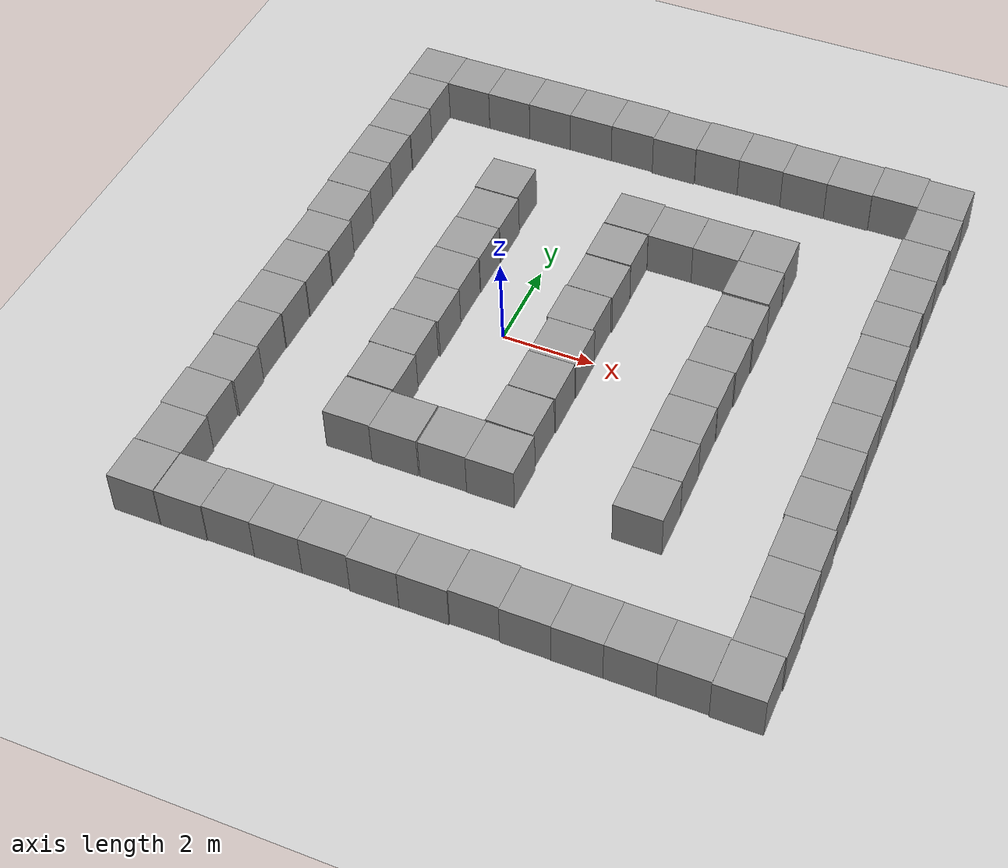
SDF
<sdf version="1.4">
 <world name="default">
  <light name="sun" type="directional">
   <pose>0 0 10 0 -0 0</pose>
   <diffuse>0.8 0.8 0.8 1</diffuse>
   <specular>0.2 0.2 0.2 1</specular>
   <attenuation>
    <range>1000</range>
    <constant>0.9</constant>
    <linear>0.01</linear>
    <quadratic>0.001</quadratic>
   </attenuation>
   <direction>-0.5 0.1 -0.9</direction>
  </light>
  <model name="ground_plane">
   <static>1</static>
   <link name="link">
    <collision name="collision">
     <geometry><plane><normal>0 0 1</normal><size>100 100</size></plane></geometry>
     <surface><friction><ode><mu>100</mu><mu2>50</mu2></ode></friction></surface>
    </collision>
    <visual name="visual">
     <cast_shadows>0</cast_shadows>
     <geometry><plane><normal>0 0 1</normal><size>100 100</size></plane></geometry>
     <material>
      <script><uri>file://media/materials/scripts/gazebo.material</uri><name>Gazebo/Grey</name></script>
     </material>
    </visual>
    <velocity_decay><linear>0</linear><angular>0</angular></velocity_decay>
   </link>
  </model>
  <physics type="ode">
   <max_step_size>0.001</max_step_size>
   <real_time_factor>1</real_time_factor>
   <real_time_update_rate>1000</real_time_update_rate>
   <gravity>0 0 -9.8</gravity>
  </physics>
  <scene><ambient>0.4 0.4 0.4 1</ambient><background>0.7 0.7 0.7 1</background><shadows>1</shadows></scene>
  <spherical_coordinates>
   <surface_model>EARTH_WGS84</surface_model>
   <latitude_deg>0</latitude_deg>
   <longitude_deg>0</longitude_deg>
   <elevation>0</elevation>
   <heading_deg>0</heading_deg>
  </spherical_coordinates>
  <model name="unit_box_1">
   <pose>-1.45911 -0.497832 0.5 0 -0 -0.000684</pose>
   <link name="link">
    <inertial>
     <mass>1</mass>
     <inertia><ixx>1</ixx><ixy>0</ixy><ixz>0</ixz><iyy>1</iyy><iyz>0</iyz><izz>1</izz></inertia>
    </inertial>
    <collision name="collision"><geometry><box><size>1 1 1</size></box></geometry></collision>
    <visual name="visual">
     <geometry><box><size>1 1 1</size></box></geometry>
     <material>
      <script><uri>file://media/materials/scripts/gazebo.material</uri><name>Gazebo/Grey</name></script>
     </material>
    </visual>
    <velocity_decay><linear>0</linear><angular>0</angular></velocity_decay>
   </link>
   <static>0</static>
  </model>
  <model name="unit_box_2">
   <pose>-1.47029 0.502232 0.5 -0 -0 -0.000612</pose>
   <link name="link">
    <inertial>
     <mass>1</mass>
     <inertia><ixx>1</ixx><ixy>0</ixy><ixz>0</ixz><iyy>1</iyy><iyz>0</iyz><izz>1</izz></inertia>
    </inertial>
    <collision name="collision"><geometry><box><size>1 1 1</size></box></geometry></collision>
    <visual name="visual">
     <geometry><box><size>1 1 1</size></box></geometry>
     <material>
      <script><uri>file://media/materials/scripts/gazebo.material</uri><name>Gazebo/Grey</name></script>
     </material>
    </visual>
    <velocity_decay><linear>0</linear><angular>0</angular></velocity_decay>
   </link>
   <static>0</static>
  </model>
  <model name="unit_box_3">
   <pose>-1.45782 1.50225 0.5 0 0 -0.000623</pose>
   <link name="link">
    <inertial>
     <mass>1</mass>
     <inertia><ixx>1</ixx><ixy>0</ixy><ixz>0</ixz><iyy>1</iyy><iyz>0</iyz><izz>1</izz></inertia>
    </inertial>
    <collision name="collision"><geometry><box><size>1 1 1</size></box></geometry></collision>
    <visual name="visual">
     <geometry><box><size>1 1 1</size></box></geometry>
     <material>
      <script><uri>file://media/materials/scripts/gazebo.material</uri><name>Gazebo/Grey</name></script>
     </material>
    </visual>
    <velocity_decay><linear>0</linear><angular>0</angular></velocity_decay>
   </link>
   <static>0</static>
  </model>
  <model name="unit_box_4">
   <pose>-1.44308 2.50225 0.5 0 -0 -0.000612</pose>
   <link name="link">
    <inertial>
     <mass>1</mass>
     <inertia><ixx>1</ixx><ixy>0</ixy><ixz>0</ixz><iyy>1</iyy><iyz>0</iyz><izz>1</izz></inertia>
    </inertial>
    <collision name="collision"><geometry><box><size>1 1 1</size></box></geometry></collision>
    <visual name="visual">
     <geometry><box><size>1 1 1</size></box></geometry>
     <material>
      <script><uri>file://media/materials/scripts/gazebo.material</uri><name>Gazebo/Grey</name></script>
     </material>
    </visual>
    <velocity_decay><linear>0</linear><angular>0</angular></velocity_decay>
   </link>
   <static>0</static>
  </model>
  <model name="unit_box_7">
   <pose>1.5402 -0.524001 0.5 0 -0 -0.000858</pose>
   <link name="link">
    <inertial>
     <mass>1</mass>
     <inertia><ixx>1</ixx><ixy>0</ixy><ixz>0</ixz><iyy>1</iyy><iyz>0</iyz><izz>1</izz></inertia>
    </inertial>
    <collision name="collision"><geometry><box><size>1 1 1</size></box></geometry></collision>
    <visual name="visual">
     <geometry><box><size>1 1 1</size></box></geometry>
     <material>
      <script><uri>file://media/materials/scripts/gazebo.material</uri><name>Gazebo/Grey</name></script>
     </material>
    </visual>
    <velocity_decay><linear>0</linear><angular>0</angular></velocity_decay>
   </link>
   <static>0</static>
  </model>
  <model name="unit_box_8">
   <pose>1.49506 0.476822 0.5 0 0 -0.000869</pose>
   <link name="link">
    <inertial>
     <mass>1</mass>
     <inertia><ixx>1</ixx><ixy>0</ixy><ixz>0</ixz><iyy>1</iyy><iyz>0</iyz><izz>1</izz></inertia>
    </inertial>
    <collision name="collision"><geometry><box><size>1 1 1</size></box></geometry></collision>
    <visual name="visual">
     <geometry><box><size>1 1 1</size></box></geometry>
     <material>
      <script><uri>file://media/materials/scripts/gazebo.material</uri><name>Gazebo/Grey</name></script>
     </material>
    </visual>
    <velocity_decay><linear>0</linear><angular>0</angular></velocity_decay>
   </link>
   <static>0</static>
  </model>
  <model name="unit_box_9">
   <pose>-1.48056 -2.50381 0.5 -0 -0 -0.007354</pose>
   <link name="link">
    <inertial>
     <mass>1</mass>
     <inertia><ixx>1</ixx><ixy>0</ixy><ixz>0</ixz><iyy>1</iyy><iyz>0</iyz><izz>1</izz></inertia>
    </inertial>
    <collision name="collision"><geometry><box><size>1 1 1</size></box></geometry></collision>
    <visual name="visual">
     <geometry><box><size>1 1 1</size></box></geometry>
     <material>
      <script><uri>file://media/materials/scripts/gazebo.material</uri><name>Gazebo/Grey</name></script>
     </material>
    </visual>
    <velocity_decay><linear>0</linear><angular>0</angular></velocity_decay>
   </link>
   <static>0</static>
  </model>
  <model name="unit_box_10">
   <pose>1.52665 -1.5242 0.5 -0 -0 -0.00124</pose>
   <link name="link">
    <inertial>
     <mass>1</mass>
     <inertia><ixx>1</ixx><ixy>0</ixy><ixz>0</ixz><iyy>1</iyy><iyz>0</iyz><izz>1</izz></inertia>
    </inertial>
    <collision name="collision"><geometry><box><size>1 1 1</size></box></geometry></collision>
    <visual name="visual">
     <geometry><box><size>1 1 1</size></box></geometry>
     <material>
      <script><uri>file://media/materials/scripts/gazebo.material</uri><name>Gazebo/Grey</name></script>
     </material>
    </visual>
    <velocity_decay><linear>0</linear><angular>0</angular></velocity_decay>
   </link>
   <static>0</static>
  </model>
  <model name="unit_box_11">
   <pose>1.50065 -2.5391 0.5 0 0 -0.013699</pose>
   <link name="link">
    <inertial>
     <mass>1</mass>
     <inertia><ixx>1</ixx><ixy>0</ixy><ixz>0</ixz><iyy>1</iyy><iyz>0</iyz><izz>1</izz></inertia>
    </inertial>
    <collision name="collision"><geometry><box><size>1 1 1</size></box></geometry></collision>
    <visual name="visual">
     <geometry><box><size>1 1 1</size></box></geometry>
     <material>
      <script><uri>file://media/materials/scripts/gazebo.material</uri><name>Gazebo/Grey</name></script>
     </material>
    </visual>
    <velocity_decay><linear>0</linear><angular>0</angular></velocity_decay>
   </link>
   <static>0</static>
  </model>
  <model name="unit_box_13">
   <pose>1.53224 -3.56458 0.5 0 0 -0.000476</pose>
   <link name="link">
    <inertial>
     <mass>1</mass>
     <inertia><ixx>1</ixx><ixy>0</ixy><ixz>0</ixz><iyy>1</iyy><iyz>0</iyz><izz>1</izz></inertia>
    </inertial>
    <collision name="collision"><geometry><box><size>1 1 1</size></box></geometry></collision>
    <visual name="visual">
     <geometry><box><size>1 1 1</size></box></geometry>
     <material>
      <script><uri>file://media/materials/scripts/gazebo.material</uri><name>Gazebo/Grey</name></script>
     </material>
    </visual>
    <velocity_decay><linear>0</linear><angular>0</angular></velocity_decay>
   </link>
   <static>0</static>
  </model>
  <model name="unit_box_14">
   <pose>1.5288 -6.51085 0.5 0 -0 -0.000378</pose>
   <link name="link">
    <inertial>
     <mass>1</mass>
     <inertia><ixx>1</ixx><ixy>0</ixy><ixz>0</ixz><iyy>1</iyy><iyz>0</iyz><izz>1</izz></inertia>
    </inertial>
    <collision name="collision"><geometry><box><size>1 1 1</size></box></geometry></collision>
    <visual name="visual">
     <geometry><box><size>1 1 1</size></box></geometry>
     <material>
      <script><uri>file://media/materials/scripts/gazebo.material</uri><name>Gazebo/Grey</name></script>
     </material>
    </visual>
    <velocity_decay><linear>0</linear><angular>0</angular></velocity_decay>
   </link>
   <static>0</static>
  </model>
  <model name="unit_box_15">
   <pose>0.528792 -6.51508 0.5 0 0 -0.000367</pose>
   <link name="link">
    <inertial>
     <mass>1</mass>
     <inertia><ixx>1</ixx><ixy>0</ixy><ixz>0</ixz><iyy>1</iyy><iyz>0</iyz><izz>1</izz></inertia>
    </inertial>
    <collision name="collision"><geometry><box><size>1 1 1</size></box></geometry></collision>
    <visual name="visual">
     <geometry><box><size>1 1 1</size></box></geometry>
     <material>
      <script><uri>file://media/materials/scripts/gazebo.material</uri><name>Gazebo/Grey</name></script>
     </material>
    </visual>
    <velocity_decay><linear>0</linear><angular>0</angular></velocity_decay>
   </link>
   <static>0</static>
  </model>
  <model name="unit_box_16">
   <pose>-1.49535 -3.52849 0.5 0 0 -0.000498</pose>
   <link name="link">
    <inertial>
     <mass>1</mass>
     <inertia><ixx>1</ixx><ixy>0</ixy><ixz>0</ixz><iyy>1</iyy><iyz>0</iyz><izz>1</izz></inertia>
    </inertial>
    <collision name="collision"><geometry><box><size>1 1 1</size></box></geometry></collision>
    <visual name="visual">
     <geometry><box><size>1 1 1</size></box></geometry>
     <material>
      <script><uri>file://media/materials/scripts/gazebo.material</uri><name>Gazebo/Grey</name></script>
     </material>
    </visual>
    <velocity_decay><linear>0</linear><angular>0</angular></velocity_decay>
   </link>
   <static>0</static>
  </model>
  <model name="unit_box_19">
   <pose>-1.47079 3.5227 0.5 0 0 -0.000385</pose>
   <link name="link">
    <inertial>
     <mass>1</mass>
     <inertia><ixx>1</ixx><ixy>0</ixy><ixz>0</ixz><iyy>1</iyy><iyz>0</iyz><izz>1</izz></inertia>
    </inertial>
    <collision name="collision"><geometry><box><size>1 1 1</size></box></geometry></collision>
    <visual name="visual">
     <geometry><box><size>1 1 1</size></box></geometry>
     <material>
      <script><uri>file://media/materials/scripts/gazebo.material</uri><name>Gazebo/Grey</name></script>
     </material>
    </visual>
    <velocity_decay><linear>0</linear><angular>0</angular></velocity_decay>
   </link>
   <static>0</static>
  </model>
  <model name="unit_box_20">
   <pose>-0.495363 -3.55037 0.5 0 -0 -0.000498</pose>
   <link name="link">
    <inertial>
     <mass>1</mass>
     <inertia><ixx>1</ixx><ixy>0</ixy><ixz>0</ixz><iyy>1</iyy><iyz>0</iyz><izz>1</izz></inertia>
    </inertial>
    <collision name="collision"><geometry><box><size>1 1 1</size></box></geometry></collision>
    <visual name="visual">
     <geometry><box><size>1 1 1</size></box></geometry>
     <material>
      <script><uri>file://media/materials/scripts/gazebo.material</uri><name>Gazebo/Grey</name></script>
     </material>
    </visual>
    <velocity_decay><linear>0</linear><angular>0</angular></velocity_decay>
   </link>
   <static>0</static>
  </model>
  <model name="unit_box_21">
   <pose>0.532232 -3.54956 0.5 0 -0 -0.000476</pose>
   <link name="link">
    <inertial>
     <mass>1</mass>
     <inertia><ixx>1</ixx><ixy>0</ixy><ixz>0</ixz><iyy>1</iyy><iyz>0</iyz><izz>1</izz></inertia>
    </inertial>
    <collision name="collision"><geometry><box><size>1 1 1</size></box></geometry></collision>
    <visual name="visual">
     <geometry><box><size>1 1 1</size></box></geometry>
     <material>
      <script><uri>file://media/materials/scripts/gazebo.material</uri><name>Gazebo/Grey</name></script>
     </material>
    </visual>
    <velocity_decay><linear>0</linear><angular>0</angular></velocity_decay>
   </link>
   <static>0</static>
  </model>
  <model name="unit_box_22">
   <pose>1.52926 3.52561 0.5 -0 -0 -0.000472</pose>
   <link name="link">
    <inertial>
     <mass>1</mass>
     <inertia><ixx>1</ixx><ixy>0</ixy><ixz>0</ixz><iyy>1</iyy><iyz>0</iyz><izz>1</izz></inertia>
    </inertial>
    <collision name="collision"><geometry><box><size>1 1 1</size></box></geometry></collision>
    <visual name="visual">
     <geometry><box><size>1 1 1</size></box></geometry>
     <material>
      <script><uri>file://media/materials/scripts/gazebo.material</uri><name>Gazebo/Grey</name></script>
     </material>
    </visual>
    <velocity_decay><linear>0</linear><angular>0</angular></velocity_decay>
   </link>
   <static>0</static>
  </model>
  <model name="unit_box_26">
   <pose>1.52093 2.50489 0.5 0 -0 0.000534</pose>
   <link name="link">
    <inertial>
     <mass>1</mass>
     <inertia><ixx>1</ixx><ixy>0</ixy><ixz>0</ixz><iyy>1</iyy><iyz>0</iyz><izz>1</izz></inertia>
    </inertial>
    <collision name="collision"><geometry><box><size>1 1 1</size></box></geometry></collision>
    <visual name="visual">
     <geometry><box><size>1 1 1</size></box></geometry>
     <material>
      <script><uri>file://media/materials/scripts/gazebo.material</uri><name>Gazebo/Grey</name></script>
     </material>
    </visual>
    <velocity_decay><linear>0</linear><angular>0</angular></velocity_decay>
   </link>
   <static>0</static>
  </model>
  <model name="unit_box_27">
   <pose>1.52758 1.47954 0.5 -0 -0 -0.00592</pose>
   <link name="link">
    <inertial>
     <mass>1</mass>
     <inertia><ixx>1</ixx><ixy>0</ixy><ixz>0</ixz><iyy>1</iyy><iyz>0</iyz><izz>1</izz></inertia>
    </inertial>
    <collision name="collision"><geometry><box><size>1 1 1</size></box></geometry></collision>
    <visual name="visual">
     <geometry><box><size>1 1 1</size></box></geometry>
     <material>
      <script><uri>file://media/materials/scripts/gazebo.material</uri><name>Gazebo/Grey</name></script>
     </material>
    </visual>
    <velocity_decay><linear>0</linear><angular>0</angular></velocity_decay>
   </link>
   <static>0</static>
  </model>
  <model name="unit_box_28">
   <pose>-1.50489 -1.49916 0.5 -0 -0 -0.00328</pose>
   <link name="link">
    <inertial>
     <mass>1</mass>
     <inertia><ixx>1</ixx><ixy>0</ixy><ixz>0</ixz><iyy>1</iyy><iyz>0</iyz><izz>1</izz></inertia>
    </inertial>
    <collision name="collision"><geometry><box><size>1 1 1</size></box></geometry></collision>
    <visual name="visual">
     <geometry><box><size>1 1 1</size></box></geometry>
     <material>
      <script><uri>file://media/materials/scripts/gazebo.material</uri><name>Gazebo/Grey</name></script>
     </material>
    </visual>
    <velocity_decay><linear>0</linear><angular>0</angular></velocity_decay>
   </link>
   <static>0</static>
  </model>
  <model name="unit_box_33">
   <pose>2.52934 3.48916 0.5 0 -0 -0.000645</pose>
   <link name="link">
    <inertial>
     <mass>1</mass>
     <inertia><ixx>1</ixx><ixy>0</ixy><ixz>0</ixz><iyy>1</iyy><iyz>0</iyz><izz>1</izz></inertia>
    </inertial>
    <collision name="collision"><geometry><box><size>1 1 1</size></box></geometry></collision>
    <visual name="visual">
     <geometry><box><size>1 1 1</size></box></geometry>
     <material>
      <script><uri>file://media/materials/scripts/gazebo.material</uri><name>Gazebo/Grey</name></script>
     </material>
    </visual>
    <velocity_decay><linear>0</linear><angular>0</angular></velocity_decay>
   </link>
   <static>0</static>
  </model>
  <model name="unit_box_34">
   <pose>3.53014 3.48385 0.5 0 0 -0.002254</pose>
   <link name="link">
    <inertial>
     <mass>1</mass>
     <inertia><ixx>1</ixx><ixy>0</ixy><ixz>0</ixz><iyy>1</iyy><iyz>0</iyz><izz>1</izz></inertia>
    </inertial>
    <collision name="collision"><geometry><box><size>1 1 1</size></box></geometry></collision>
    <visual name="visual">
     <geometry><box><size>1 1 1</size></box></geometry>
     <material>
      <script><uri>file://media/materials/scripts/gazebo.material</uri><name>Gazebo/Grey</name></script>
     </material>
    </visual>
    <velocity_decay><linear>0</linear><angular>0</angular></velocity_decay>
   </link>
   <static>0</static>
  </model>
  <model name="unit_box_35">
   <pose>4.53397 3.50485 0.5 0 -0 -0.000889</pose>
   <link name="link">
    <inertial>
     <mass>1</mass>
     <inertia><ixx>1</ixx><ixy>0</ixy><ixz>0</ixz><iyy>1</iyy><iyz>0</iyz><izz>1</izz></inertia>
    </inertial>
    <collision name="collision"><geometry><box><size>1 1 1</size></box></geometry></collision>
    <visual name="visual">
     <geometry><box><size>1 1 1</size></box></geometry>
     <material>
      <script><uri>file://media/materials/scripts/gazebo.material</uri><name>Gazebo/Grey</name></script>
     </material>
    </visual>
    <velocity_decay><linear>0</linear><angular>0</angular></velocity_decay>
   </link>
   <static>0</static>
  </model>
  <model name="unit_box_36">
   <pose>4.52809 2.50433 0.5 0 0 -0.00194</pose>
   <link name="link">
    <inertial>
     <mass>1</mass>
     <inertia><ixx>1</ixx><ixy>0</ixy><ixz>0</ixz><iyy>1</iyy><iyz>0</iyz><izz>1</izz></inertia>
    </inertial>
    <collision name="collision"><geometry><box><size>1 1 1</size></box></geometry></collision>
    <visual name="visual">
     <geometry><box><size>1 1 1</size></box></geometry>
     <material>
      <script><uri>file://media/materials/scripts/gazebo.material</uri><name>Gazebo/Grey</name></script>
     </material>
    </visual>
    <velocity_decay><linear>0</linear><angular>0</angular></velocity_decay>
   </link>
   <static>0</static>
  </model>
  <model name="unit_box_37">
   <pose>4.55127 1.45925 0.5 0 -0 0</pose>
   <link name="link">
    <inertial>
     <mass>1</mass>
     <inertia><ixx>1</ixx><ixy>0</ixy><ixz>0</ixz><iyy>1</iyy><iyz>0</iyz><izz>1</izz></inertia>
    </inertial>
    <collision name="collision"><geometry><box><size>1 1 1</size></box></geometry></collision>
    <visual name="visual">
     <geometry><box><size>1 1 1</size></box></geometry>
     <material>
      <script><uri>file://media/materials/scripts/gazebo.material</uri><name>Gazebo/Grey</name></script>
     </material>
    </visual>
    <velocity_decay><linear>0</linear><angular>0</angular></velocity_decay>
   </link>
   <static>0</static>
  </model>
  <model name="unit_box_38">
   <pose>4.53097 0.455261 0.5 0 -0 0.00101</pose>
   <link name="link">
    <inertial>
     <mass>1</mass>
     <inertia><ixx>1</ixx><ixy>0</ixy><ixz>0</ixz><iyy>1</iyy><iyz>0</iyz><izz>1</izz></inertia>
    </inertial>
    <collision name="collision"><geometry><box><size>1 1 1</size></box></geometry></collision>
    <visual name="visual">
     <geometry><box><size>1 1 1</size></box></geometry>
     <material>
      <script><uri>file://media/materials/scripts/gazebo.material</uri><name>Gazebo/Grey</name></script>
     </material>
    </visual>
    <velocity_decay><linear>0</linear><angular>0</angular></velocity_decay>
   </link>
   <static>0</static>
  </model>
  <model name="unit_box_39">
   <pose>4.50946 -0.544822 0.5 0 -0 0.001131</pose>
   <link name="link">
    <inertial>
     <mass>1</mass>
     <inertia><ixx>1</ixx><ixy>0</ixy><ixz>0</ixz><iyy>1</iyy><iyz>0</iyz><izz>1</izz></inertia>
    </inertial>
    <collision name="collision"><geometry><box><size>1 1 1</size></box></geometry></collision>
    <visual name="visual">
     <geometry><box><size>1 1 1</size></box></geometry>
     <material>
      <script><uri>file://media/materials/scripts/gazebo.material</uri><name>Gazebo/Grey</name></script>
     </material>
    </visual>
    <velocity_decay><linear>0</linear><angular>0</angular></velocity_decay>
   </link>
   <static>0</static>
  </model>
  <model name="unit_box_40">
   <pose>4.50411 -1.54523 0.5 0 -0 0.001935</pose>
   <link name="link">
    <inertial>
     <mass>1</mass>
     <inertia><ixx>1</ixx><ixy>0</ixy><ixz>0</ixz><iyy>1</iyy><iyz>0</iyz><izz>1</izz></inertia>
    </inertial>
    <collision name="collision"><geometry><box><size>1 1 1</size></box></geometry></collision>
    <visual name="visual">
     <geometry><box><size>1 1 1</size></box></geometry>
     <material>
      <script><uri>file://media/materials/scripts/gazebo.material</uri><name>Gazebo/Grey</name></script>
     </material>
    </visual>
    <velocity_decay><linear>0</linear><angular>0</angular></velocity_decay>
   </link>
   <static>0</static>
  </model>
  <model name="unit_box_41">
   <pose>4.51675 -2.54608 0.5 0 -0 0.003705</pose>
   <link name="link">
    <inertial>
     <mass>1</mass>
     <inertia><ixx>1</ixx><ixy>0</ixy><ixz>0</ixz><iyy>1</iyy><iyz>0</iyz><izz>1</izz></inertia>
    </inertial>
    <collision name="collision"><geometry><box><size>1 1 1</size></box></geometry></collision>
    <visual name="visual">
     <geometry><box><size>1 1 1</size></box></geometry>
     <material>
      <script><uri>file://media/materials/scripts/gazebo.material</uri><name>Gazebo/Grey</name></script>
     </material>
    </visual>
    <velocity_decay><linear>0</linear><angular>0</angular></velocity_decay>
   </link>
   <static>0</static>
  </model>
  <model name="unit_box_42">
   <pose>4.51838 -3.54803 0.5 0 -0 -0.000195</pose>
   <link name="link">
    <inertial>
     <mass>1</mass>
     <inertia><ixx>1</ixx><ixy>0</ixy><ixz>0</ixz><iyy>1</iyy><iyz>0</iyz><izz>1</izz></inertia>
    </inertial>
    <collision name="collision"><geometry><box><size>1 1 1</size></box></geometry></collision>
    <visual name="visual">
     <geometry><box><size>1 1 1</size></box></geometry>
     <material>
      <script><uri>file://media/materials/scripts/gazebo.material</uri><name>Gazebo/Grey</name></script>
     </material>
    </visual>
    <velocity_decay><linear>0</linear><angular>0</angular></velocity_decay>
   </link>
   <static>0</static>
  </model>
  <model name="unit_box_43">
   <pose>2.52884 -6.48279 0.5 -0 -0 -0.000433</pose>
   <link name="link">
    <inertial>
     <mass>1</mass>
     <inertia><ixx>1</ixx><ixy>0</ixy><ixz>0</ixz><iyy>1</iyy><iyz>0</iyz><izz>1</izz></inertia>
    </inertial>
    <collision name="collision"><geometry><box><size>1 1 1</size></box></geometry></collision>
    <visual name="visual">
     <geometry><box><size>1 1 1</size></box></geometry>
     <material>
      <script><uri>file://media/materials/scripts/gazebo.material</uri><name>Gazebo/Grey</name></script>
     </material>
    </visual>
    <velocity_decay><linear>0</linear><angular>0</angular></velocity_decay>
   </link>
   <static>0</static>
  </model>
  <model name="unit_box_44">
   <pose>3.52885 -6.50694 0.5 -0 -0 -0.00048</pose>
   <link name="link">
    <inertial>
     <mass>1</mass>
     <inertia><ixx>1</ixx><ixy>0</ixy><ixz>0</ixz><iyy>1</iyy><iyz>0</iyz><izz>1</izz></inertia>
    </inertial>
    <collision name="collision"><geometry><box><size>1 1 1</size></box></geometry></collision>
    <visual name="visual">
     <geometry><box><size>1 1 1</size></box></geometry>
     <material>
      <script><uri>file://media/materials/scripts/gazebo.material</uri><name>Gazebo/Grey</name></script>
     </material>
    </visual>
    <velocity_decay><linear>0</linear><angular>0</angular></velocity_decay>
   </link>
   <static>0</static>
  </model>
  <model name="unit_box_45">
   <pose>4.52886 -6.51639 0.5 0 0 -0.000511</pose>
   <link name="link">
    <inertial>
     <mass>1</mass>
     <inertia><ixx>1</ixx><ixy>0</ixy><ixz>0</ixz><iyy>1</iyy><iyz>0</iyz><izz>1</izz></inertia>
    </inertial>
    <collision name="collision"><geometry><box><size>1 1 1</size></box></geometry></collision>
    <visual name="visual">
     <geometry><box><size>1 1 1</size></box></geometry>
     <material>
      <script><uri>file://media/materials/scripts/gazebo.material</uri><name>Gazebo/Grey</name></script>
     </material>
    </visual>
    <velocity_decay><linear>0</linear><angular>0</angular></velocity_decay>
   </link>
   <static>0</static>
  </model>
  <model name="unit_box_46">
   <pose>5.52892 -6.51755 0.5 0 0 -0.000625</pose>
   <link name="link">
    <inertial>
     <mass>1</mass>
     <inertia><ixx>1</ixx><ixy>0</ixy><ixz>0</ixz><iyy>1</iyy><iyz>0</iyz><izz>1</izz></inertia>
    </inertial>
    <collision name="collision"><geometry><box><size>1 1 1</size></box></geometry></collision>
    <visual name="visual">
     <geometry><box><size>1 1 1</size></box></geometry>
     <material>
      <script><uri>file://media/materials/scripts/gazebo.material</uri><name>Gazebo/Grey</name></script>
     </material>
    </visual>
    <velocity_decay><linear>0</linear><angular>0</angular></velocity_decay>
   </link>
   <static>0</static>
  </model>
  <model name="unit_box_47">
   <pose>6.52892 -6.52181 0.5 0 -0 -0.000629</pose>
   <link name="link">
    <inertial>
     <mass>1</mass>
     <inertia><ixx>1</ixx><ixy>0</ixy><ixz>0</ixz><iyy>1</iyy><iyz>0</iyz><izz>1</izz></inertia>
    </inertial>
    <collision name="collision"><geometry><box><size>1 1 1</size></box></geometry></collision>
    <visual name="visual">
     <geometry><box><size>1 1 1</size></box></geometry>
     <material>
      <script><uri>file://media/materials/scripts/gazebo.material</uri><name>Gazebo/Grey</name></script>
     </material>
    </visual>
    <velocity_decay><linear>0</linear><angular>0</angular></velocity_decay>
   </link>
   <static>0</static>
  </model>
  <model name="unit_box_48">
   <pose>7.52919 -6.55151 0.5 -0 -0 -9.4e-05</pose>
   <link name="link">
    <inertial>
     <mass>1</mass>
     <inertia><ixx>1</ixx><ixy>0</ixy><ixz>0</ixz><iyy>1</iyy><iyz>0</iyz><izz>1</izz></inertia>
    </inertial>
    <collision name="collision"><geometry><box><size>1 1 1</size></box></geometry></collision>
    <visual name="visual">
     <geometry><box><size>1 1 1</size></box></geometry>
     <material>
      <script><uri>file://media/materials/scripts/gazebo.material</uri><name>Gazebo/Grey</name></script>
     </material>
    </visual>
    <velocity_decay><linear>0</linear><angular>0</angular></velocity_decay>
   </link>
   <static>0</static>
  </model>
  <model name="unit_box_49">
   <pose>7.54955 -5.55151 0.5 0 -0 -9.4e-05</pose>
   <link name="link">
    <inertial>
     <mass>1</mass>
     <inertia><ixx>1</ixx><ixy>0</ixy><ixz>0</ixz><iyy>1</iyy><iyz>0</iyz><izz>1</izz></inertia>
    </inertial>
    <collision name="collision"><geometry><box><size>1 1 1</size></box></geometry></collision>
    <visual name="visual">
     <geometry><box><size>1 1 1</size></box></geometry>
     <material>
      <script><uri>file://media/materials/scripts/gazebo.material</uri><name>Gazebo/Grey</name></script>
     </material>
    </visual>
    <velocity_decay><linear>0</linear><angular>0</angular></velocity_decay>
   </link>
   <static>0</static>
  </model>
  <model name="unit_box_50">
   <pose>7.53995 -4.55151 0.5 0 0 -9.5e-05</pose>
   <link name="link">
    <inertial>
     <mass>1</mass>
     <inertia><ixx>1</ixx><ixy>0</ixy><ixz>0</ixz><iyy>1</iyy><iyz>0</iyz><izz>1</izz></inertia>
    </inertial>
    <collision name="collision"><geometry><box><size>1 1 1</size></box></geometry></collision>
    <visual name="visual">
     <geometry><box><size>1 1 1</size></box></geometry>
     <material>
      <script><uri>file://media/materials/scripts/gazebo.material</uri><name>Gazebo/Grey</name></script>
     </material>
    </visual>
    <velocity_decay><linear>0</linear><angular>0</angular></velocity_decay>
   </link>
   <static>0</static>
  </model>
  <model name="unit_box_51">
   <pose>7.53003 -3.55146 0.5 0 0 -0.000182</pose>
   <link name="link">
    <inertial>
     <mass>1</mass>
     <inertia><ixx>1</ixx><ixy>0</ixy><ixz>0</ixz><iyy>1</iyy><iyz>0</iyz><izz>1</izz></inertia>
    </inertial>
    <collision name="collision"><geometry><box><size>1 1 1</size></box></geometry></collision>
    <visual name="visual">
     <geometry><box><size>1 1 1</size></box></geometry>
     <material>
      <script><uri>file://media/materials/scripts/gazebo.material</uri><name>Gazebo/Grey</name></script>
     </material>
    </visual>
    <velocity_decay><linear>0</linear><angular>0</angular></velocity_decay>
   </link>
   <static>0</static>
  </model>
  <model name="unit_box_52">
   <pose>7.50073 -2.55141 0.5 0 0 -0.000277</pose>
   <link name="link">
    <inertial>
     <mass>1</mass>
     <inertia><ixx>1</ixx><ixy>0</ixy><ixz>0</ixz><iyy>1</iyy><iyz>0</iyz><izz>1</izz></inertia>
    </inertial>
    <collision name="collision"><geometry><box><size>1 1 1</size></box></geometry></collision>
    <visual name="visual">
     <geometry><box><size>1 1 1</size></box></geometry>
     <material>
      <script><uri>file://media/materials/scripts/gazebo.material</uri><name>Gazebo/Grey</name></script>
     </material>
    </visual>
    <velocity_decay><linear>0</linear><angular>0</angular></velocity_decay>
   </link>
   <static>0</static>
  </model>
  <model name="unit_box_53">
   <pose>7.50935 -1.5514 0.5 -0 -0 -0.000301</pose>
   <link name="link">
    <inertial>
     <mass>1</mass>
     <inertia><ixx>1</ixx><ixy>0</ixy><ixz>0</ixz><iyy>1</iyy><iyz>0</iyz><izz>1</izz></inertia>
    </inertial>
    <collision name="collision"><geometry><box><size>1 1 1</size></box></geometry></collision>
    <visual name="visual">
     <geometry><box><size>1 1 1</size></box></geometry>
     <material>
      <script><uri>file://media/materials/scripts/gazebo.material</uri><name>Gazebo/Grey</name></script>
     </material>
    </visual>
    <velocity_decay><linear>0</linear><angular>0</angular></velocity_decay>
   </link>
   <static>0</static>
  </model>
  <model name="unit_box_54">
   <pose>7.49965 -0.551361 0.5 0 0 -0.000374</pose>
   <link name="link">
    <inertial>
     <mass>1</mass>
     <inertia><ixx>1</ixx><ixy>0</ixy><ixz>0</ixz><iyy>1</iyy><iyz>0</iyz><izz>1</izz></inertia>
    </inertial>
    <collision name="collision"><geometry><box><size>1 1 1</size></box></geometry></collision>
    <visual name="visual">
     <geometry><box><size>1 1 1</size></box></geometry>
     <material>
      <script><uri>file://media/materials/scripts/gazebo.material</uri><name>Gazebo/Grey</name></script>
     </material>
    </visual>
    <velocity_decay><linear>0</linear><angular>0</angular></velocity_decay>
   </link>
   <static>0</static>
  </model>
  <model name="unit_box_55">
   <pose>-0.471202 -6.48766 0.5 0 0 -0.000359</pose>
   <link name="link">
    <inertial>
     <mass>1</mass>
     <inertia><ixx>1</ixx><ixy>0</ixy><ixz>0</ixz><iyy>1</iyy><iyz>0</iyz><izz>1</izz></inertia>
    </inertial>
    <collision name="collision"><geometry><box><size>1 1 1</size></box></geometry></collision>
    <visual name="visual">
     <geometry><box><size>1 1 1</size></box></geometry>
     <material>
      <script><uri>file://media/materials/scripts/gazebo.material</uri><name>Gazebo/Grey</name></script>
     </material>
    </visual>
    <velocity_decay><linear>0</linear><angular>0</angular></velocity_decay>
   </link>
   <static>0</static>
  </model>
  <model name="unit_box_56">
   <pose>-1.47124 -6.48704 0.499999 3e-06 1.03398e-25 -0.000283</pose>
   <link name="link">
    <inertial>
     <mass>1</mass>
     <inertia><ixx>1</ixx><ixy>0</ixy><ixz>0</ixz><iyy>1</iyy><iyz>0</iyz><izz>1</izz></inertia>
    </inertial>
    <collision name="collision"><geometry><box><size>1 1 1</size></box></geometry></collision>
    <visual name="visual">
     <geometry><box><size>1 1 1</size></box></geometry>
     <material>
      <script><uri>file://media/materials/scripts/gazebo.material</uri><name>Gazebo/Grey</name></script>
     </material>
    </visual>
    <velocity_decay><linear>0</linear><angular>0</angular></velocity_decay>
   </link>
   <static>0</static>
  </model>
  <model name="unit_box_57">
   <pose>-2.47129 -6.47968 0.5 0 -0 -0.000175</pose>
   <link name="link">
    <inertial>
     <mass>1</mass>
     <inertia><ixx>1</ixx><ixy>0</ixy><ixz>0</ixz><iyy>1</iyy><iyz>0</iyz><izz>1</izz></inertia>
    </inertial>
    <collision name="collision"><geometry><box><size>1 1 1</size></box></geometry></collision>
    <visual name="visual">
     <geometry><box><size>1 1 1</size></box></geometry>
     <material>
      <script><uri>file://media/materials/scripts/gazebo.material</uri><name>Gazebo/Grey</name></script>
     </material>
    </visual>
    <velocity_decay><linear>0</linear><angular>0</angular></velocity_decay>
   </link>
   <static>0</static>
  </model>
  <model name="unit_box_58">
   <pose>-3.47136 -6.4973 0.5 -0 -0 -4e-05</pose>
   <link name="link">
    <inertial>
     <mass>1</mass>
     <inertia><ixx>1</ixx><ixy>0</ixy><ixz>0</ixz><iyy>1</iyy><iyz>0</iyz><izz>1</izz></inertia>
    </inertial>
    <collision name="collision"><geometry><box><size>1 1 1</size></box></geometry></collision>
    <visual name="visual">
     <geometry><box><size>1 1 1</size></box></geometry>
     <material>
      <script><uri>file://media/materials/scripts/gazebo.material</uri><name>Gazebo/Grey</name></script>
     </material>
    </visual>
    <velocity_decay><linear>0</linear><angular>0</angular></velocity_decay>
   </link>
   <static>0</static>
  </model>
  <model name="unit_box_59">
   <pose>-4.48387 -6.49731 0.5 0 -0 2.9e-05</pose>
   <link name="link">
    <inertial>
     <mass>1</mass>
     <inertia><ixx>1</ixx><ixy>0</ixy><ixz>0</ixz><iyy>1</iyy><iyz>0</iyz><izz>1</izz></inertia>
    </inertial>
    <collision name="collision"><geometry><box><size>1 1 1</size></box></geometry></collision>
    <visual name="visual">
     <geometry><box><size>1 1 1</size></box></geometry>
     <material>
      <script><uri>file://media/materials/scripts/gazebo.material</uri><name>Gazebo/Grey</name></script>
     </material>
    </visual>
    <velocity_decay><linear>0</linear><angular>0</angular></velocity_decay>
   </link>
   <static>0</static>
  </model>
  <model name="unit_box_60">
   <pose>-4.46708 -5.49726 0.5 0 0 -4.9e-05</pose>
   <link name="link">
    <inertial>
     <mass>1</mass>
     <inertia><ixx>1</ixx><ixy>0</ixy><ixz>0</ixz><iyy>1</iyy><iyz>0</iyz><izz>1</izz></inertia>
    </inertial>
    <collision name="collision"><geometry><box><size>1 1 1</size></box></geometry></collision>
    <visual name="visual">
     <geometry><box><size>1 1 1</size></box></geometry>
     <material>
      <script><uri>file://media/materials/scripts/gazebo.material</uri><name>Gazebo/Grey</name></script>
     </material>
    </visual>
    <velocity_decay><linear>0</linear><angular>0</angular></velocity_decay>
   </link>
   <static>0</static>
  </model>
  <model name="unit_box_61">
   <pose>-4.49638 -4.49724 0.5 0 -0 -5e-05</pose>
   <link name="link">
    <inertial>
     <mass>1</mass>
     <inertia><ixx>1</ixx><ixy>0</ixy><ixz>0</ixz><iyy>1</iyy><iyz>0</iyz><izz>1</izz></inertia>
    </inertial>
    <collision name="collision"><geometry><box><size>1 1 1</size></box></geometry></collision>
    <visual name="visual">
     <geometry><box><size>1 1 1</size></box></geometry>
     <material>
      <script><uri>file://media/materials/scripts/gazebo.material</uri><name>Gazebo/Grey</name></script>
     </material>
    </visual>
    <velocity_decay><linear>0</linear><angular>0</angular></velocity_decay>
   </link>
   <static>0</static>
  </model>
  <model name="unit_box_62">
   <pose>-4.4508 -3.49721 0.5 -0 -0 -0.000119</pose>
   <link name="link">
    <inertial>
     <mass>1</mass>
     <inertia><ixx>1</ixx><ixy>0</ixy><ixz>0</ixz><iyy>1</iyy><iyz>0</iyz><izz>1</izz></inertia>
    </inertial>
    <collision name="collision"><geometry><box><size>1 1 1</size></box></geometry></collision>
    <visual name="visual">
     <geometry><box><size>1 1 1</size></box></geometry>
     <material>
      <script><uri>file://media/materials/scripts/gazebo.material</uri><name>Gazebo/Grey</name></script>
     </material>
    </visual>
    <velocity_decay><linear>0</linear><angular>0</angular></velocity_decay>
   </link>
   <static>0</static>
  </model>
  <model name="unit_box_63">
   <pose>-4.48601 -2.49719 0.5 0 0 -0.000118</pose>
   <link name="link">
    <inertial>
     <mass>1</mass>
     <inertia><ixx>1</ixx><ixy>0</ixy><ixz>0</ixz><iyy>1</iyy><iyz>0</iyz><izz>1</izz></inertia>
    </inertial>
    <collision name="collision"><geometry><box><size>1 1 1</size></box></geometry></collision>
    <visual name="visual">
     <geometry><box><size>1 1 1</size></box></geometry>
     <material>
      <script><uri>file://media/materials/scripts/gazebo.material</uri><name>Gazebo/Grey</name></script>
     </material>
    </visual>
    <velocity_decay><linear>0</linear><angular>0</angular></velocity_decay>
   </link>
   <static>0</static>
  </model>
  <model name="unit_box_64">
   <pose>-4.46722 -1.4972 0.5 -0 -0 -0.000117</pose>
   <link name="link">
    <inertial>
     <mass>1</mass>
     <inertia><ixx>1</ixx><ixy>0</ixy><ixz>0</ixz><iyy>1</iyy><iyz>0</iyz><izz>1</izz></inertia>
    </inertial>
    <collision name="collision"><geometry><box><size>1 1 1</size></box></geometry></collision>
    <visual name="visual">
     <geometry><box><size>1 1 1</size></box></geometry>
     <material>
      <script><uri>file://media/materials/scripts/gazebo.material</uri><name>Gazebo/Grey</name></script>
     </material>
    </visual>
    <velocity_decay><linear>0</linear><angular>0</angular></velocity_decay>
   </link>
   <static>0</static>
  </model>
  <model name="unit_box_65">
   <pose>-4.4511 -0.497186 0.5 0 0 -9.7e-05</pose>
   <link name="link">
    <inertial>
     <mass>1</mass>
     <inertia><ixx>1</ixx><ixy>0</ixy><ixz>0</ixz><iyy>1</iyy><iyz>0</iyz><izz>1</izz></inertia>
    </inertial>
    <collision name="collision"><geometry><box><size>1 1 1</size></box></geometry></collision>
    <visual name="visual">
     <geometry><box><size>1 1 1</size></box></geometry>
     <material>
      <script><uri>file://media/materials/scripts/gazebo.material</uri><name>Gazebo/Grey</name></script>
     </material>
    </visual>
    <velocity_decay><linear>0</linear><angular>0</angular></velocity_decay>
   </link>
   <static>0</static>
  </model>
  <model name="unit_box_66">
   <pose>-4.43349 0.502864 0.5 0 0 -1.1e-05</pose>
   <link name="link">
    <inertial>
     <mass>1</mass>
     <inertia><ixx>1</ixx><ixy>0</ixy><ixz>0</ixz><iyy>1</iyy><iyz>0</iyz><izz>1</izz></inertia>
    </inertial>
    <collision name="collision"><geometry><box><size>1 1 1</size></box></geometry></collision>
    <visual name="visual">
     <geometry><box><size>1 1 1</size></box></geometry>
     <material>
      <script><uri>file://media/materials/scripts/gazebo.material</uri><name>Gazebo/Grey</name></script>
     </material>
    </visual>
    <velocity_decay><linear>0</linear><angular>0</angular></velocity_decay>
   </link>
   <static>0</static>
  </model>
  <model name="unit_box_67">
   <pose>-4.47433 1.50287 0.5 0 0 -4e-06</pose>
   <link name="link">
    <inertial>
     <mass>1</mass>
     <inertia><ixx>1</ixx><ixy>0</ixy><ixz>0</ixz><iyy>1</iyy><iyz>0</iyz><izz>1</izz></inertia>
    </inertial>
    <collision name="collision"><geometry><box><size>1 1 1</size></box></geometry></collision>
    <visual name="visual">
     <geometry><box><size>1 1 1</size></box></geometry>
     <material>
      <script><uri>file://media/materials/scripts/gazebo.material</uri><name>Gazebo/Grey</name></script>
     </material>
    </visual>
    <velocity_decay><linear>0</linear><angular>0</angular></velocity_decay>
   </link>
   <static>0</static>
  </model>
  <model name="unit_box_68">
   <pose>-4.49604 2.50403 0.5 0 -0 0.000164</pose>
   <link name="link">
    <inertial>
     <mass>1</mass>
     <inertia><ixx>1</ixx><ixy>0</ixy><ixz>0</ixz><iyy>1</iyy><iyz>0</iyz><izz>1</izz></inertia>
    </inertial>
    <collision name="collision"><geometry><box><size>1 1 1</size></box></geometry></collision>
    <visual name="visual">
     <geometry><box><size>1 1 1</size></box></geometry>
     <material>
      <script><uri>file://media/materials/scripts/gazebo.material</uri><name>Gazebo/Grey</name></script>
     </material>
    </visual>
    <velocity_decay><linear>0</linear><angular>0</angular></velocity_decay>
   </link>
   <static>0</static>
  </model>
  <model name="unit_box_69">
   <pose>-4.49846 3.50412 0.5 0 -0 0.000249</pose>
   <link name="link">
    <inertial>
     <mass>1</mass>
     <inertia><ixx>1</ixx><ixy>0</ixy><ixz>0</ixz><iyy>1</iyy><iyz>0</iyz><izz>1</izz></inertia>
    </inertial>
    <collision name="collision"><geometry><box><size>1 1 1</size></box></geometry></collision>
    <visual name="visual">
     <geometry><box><size>1 1 1</size></box></geometry>
     <material>
      <script><uri>file://media/materials/scripts/gazebo.material</uri><name>Gazebo/Grey</name></script>
     </material>
    </visual>
    <velocity_decay><linear>0</linear><angular>0</angular></velocity_decay>
   </link>
   <static>0</static>
  </model>
  <model name="unit_box_70">
   <pose>-4.48257 4.50422 0.5 -1e-06 5.16988e-26 0.000409</pose>
   <link name="link">
    <inertial>
     <mass>1</mass>
     <inertia><ixx>1</ixx><ixy>0</ixy><ixz>0</ixz><iyy>1</iyy><iyz>0</iyz><izz>1</izz></inertia>
    </inertial>
    <collision name="collision"><geometry><box><size>1 1 1</size></box></geometry></collision>
    <visual name="visual">
     <geometry><box><size>1 1 1</size></box></geometry>
     <material>
      <script><uri>file://media/materials/scripts/gazebo.material</uri><name>Gazebo/Grey</name></script>
     </material>
    </visual>
    <velocity_decay><linear>0</linear><angular>0</angular></velocity_decay>
   </link>
   <static>0</static>
  </model>
  <model name="unit_box_71">
   <pose>-4.48473 5.5044 0.5 -1.03398e-25 -1e-06 0.000735</pose>
   <link name="link">
    <inertial>
     <mass>1</mass>
     <inertia><ixx>1</ixx><ixy>0</ixy><ixz>0</ixz><iyy>1</iyy><iyz>0</iyz><izz>1</izz></inertia>
    </inertial>
    <collision name="collision"><geometry><box><size>1 1 1</size></box></geometry></collision>
    <visual name="visual">
     <geometry><box><size>1 1 1</size></box></geometry>
     <material>
      <script><uri>file://media/materials/scripts/gazebo.material</uri><name>Gazebo/Grey</name></script>
     </material>
    </visual>
    <velocity_decay><linear>0</linear><angular>0</angular></velocity_decay>
   </link>
   <static>0</static>
  </model>
  <model name="unit_box_72">
   <pose>-4.48507 6.50479 0.5 0 0 -3.6e-05</pose>
   <link name="link">
    <inertial>
     <mass>1</mass>
     <inertia><ixx>1</ixx><ixy>0</ixy><ixz>0</ixz><iyy>1</iyy><iyz>0</iyz><izz>1</izz></inertia>
    </inertial>
    <collision name="collision"><geometry><box><size>1 1 1</size></box></geometry></collision>
    <visual name="visual">
     <geometry><box><size>1 1 1</size></box></geometry>
     <material>
      <script><uri>file://media/materials/scripts/gazebo.material</uri><name>Gazebo/Grey</name></script>
     </material>
    </visual>
    <velocity_decay><linear>0</linear><angular>0</angular></velocity_decay>
   </link>
   <static>0</static>
  </model>
  <model name="unit_box_73">
   <pose>-3.48488 6.49443 0.5 1e-06 1e-06 -0.0004</pose>
   <link name="link">
    <inertial>
     <mass>1</mass>
     <inertia><ixx>1</ixx><ixy>0</ixy><ixz>0</ixz><iyy>1</iyy><iyz>0</iyz><izz>1</izz></inertia>
    </inertial>
    <collision name="collision"><geometry><box><size>1 1 1</size></box></geometry></collision>
    <visual name="visual">
     <geometry><box><size>1 1 1</size></box></geometry>
     <material>
      <script><uri>file://media/materials/scripts/gazebo.material</uri><name>Gazebo/Grey</name></script>
     </material>
    </visual>
    <velocity_decay><linear>0</linear><angular>0</angular></velocity_decay>
   </link>
   <static>0</static>
  </model>
  <model name="unit_box_74">
   <pose>-2.48479 6.49631 0.5 1e-06 1.03398e-25 -0.00057</pose>
   <link name="link">
    <inertial>
     <mass>1</mass>
     <inertia><ixx>1</ixx><ixy>0</ixy><ixz>0</ixz><iyy>1</iyy><iyz>0</iyz><izz>1</izz></inertia>
    </inertial>
    <collision name="collision"><geometry><box><size>1 1 1</size></box></geometry></collision>
    <visual name="visual">
     <geometry><box><size>1 1 1</size></box></geometry>
     <material>
      <script><uri>file://media/materials/scripts/gazebo.material</uri><name>Gazebo/Grey</name></script>
     </material>
    </visual>
    <velocity_decay><linear>0</linear><angular>0</angular></velocity_decay>
   </link>
   <static>0</static>
  </model>
  <model name="unit_box_75">
   <pose>-1.48476 6.49813 0.49998 0 0 -0.000628</pose>
   <link name="link">
    <inertial>
     <mass>1</mass>
     <inertia><ixx>1</ixx><ixy>0</ixy><ixz>0</ixz><iyy>1</iyy><iyz>0</iyz><izz>1</izz></inertia>
    </inertial>
    <collision name="collision"><geometry><box><size>1 1 1</size></box></geometry></collision>
    <visual name="visual">
     <geometry><box><size>1 1 1</size></box></geometry>
     <material>
      <script><uri>file://media/materials/scripts/gazebo.material</uri><name>Gazebo/Grey</name></script>
     </material>
    </visual>
    <velocity_decay><linear>0</linear><angular>0</angular></velocity_decay>
   </link>
   <static>0</static>
  </model>
  <model name="unit_box_76">
   <pose>-0.484666 6.50197 0.5 0 0 -0.000802</pose>
   <link name="link">
    <inertial>
     <mass>1</mass>
     <inertia><ixx>1</ixx><ixy>0</ixy><ixz>0</ixz><iyy>1</iyy><iyz>0</iyz><izz>1</izz></inertia>
    </inertial>
    <collision name="collision"><geometry><box><size>1 1 1</size></box></geometry></collision>
    <visual name="visual">
     <geometry><box><size>1 1 1</size></box></geometry>
     <material>
      <script><uri>file://media/materials/scripts/gazebo.material</uri><name>Gazebo/Grey</name></script>
     </material>
    </visual>
    <velocity_decay><linear>0</linear><angular>0</angular></velocity_decay>
   </link>
   <static>0</static>
  </model>
  <model name="unit_box_77">
   <pose>0.51535 6.50403 0.5 0 -0 -0.000827</pose>
   <link name="link">
    <inertial>
     <mass>1</mass>
     <inertia><ixx>1</ixx><ixy>0</ixy><ixz>0</ixz><iyy>1</iyy><iyz>0</iyz><izz>1</izz></inertia>
    </inertial>
    <collision name="collision"><geometry><box><size>1 1 1</size></box></geometry></collision>
    <visual name="visual">
     <geometry><box><size>1 1 1</size></box></geometry>
     <material>
      <script><uri>file://media/materials/scripts/gazebo.material</uri><name>Gazebo/Grey</name></script>
     </material>
    </visual>
    <velocity_decay><linear>0</linear><angular>0</angular></velocity_decay>
   </link>
   <static>0</static>
  </model>
  <model name="unit_box_78">
   <pose>1.51534 6.46741 0.5 0 0 -0.000793</pose>
   <link name="link">
    <inertial>
     <mass>1</mass>
     <inertia><ixx>1</ixx><ixy>0</ixy><ixz>0</ixz><iyy>1</iyy><iyz>0</iyz><izz>1</izz></inertia>
    </inertial>
    <collision name="collision"><geometry><box><size>1 1 1</size></box></geometry></collision>
    <visual name="visual">
     <geometry><box><size>1 1 1</size></box></geometry>
     <material>
      <script><uri>file://media/materials/scripts/gazebo.material</uri><name>Gazebo/Grey</name></script>
     </material>
    </visual>
    <velocity_decay><linear>0</linear><angular>0</angular></velocity_decay>
   </link>
   <static>0</static>
  </model>
  <model name="unit_box_79">
   <pose>2.51536 6.49013 0.5 0 -0 -0.0008</pose>
   <link name="link">
    <inertial>
     <mass>1</mass>
     <inertia><ixx>1</ixx><ixy>0</ixy><ixz>0</ixz><iyy>1</iyy><iyz>0</iyz><izz>1</izz></inertia>
    </inertial>
    <collision name="collision"><geometry><box><size>1 1 1</size></box></geometry></collision>
    <visual name="visual">
     <geometry><box><size>1 1 1</size></box></geometry>
     <material>
      <script><uri>file://media/materials/scripts/gazebo.material</uri><name>Gazebo/Grey</name></script>
     </material>
    </visual>
    <velocity_decay><linear>0</linear><angular>0</angular></velocity_decay>
   </link>
   <static>0</static>
  </model>
  <model name="unit_box_80">
   <pose>3.51551 6.49284 0.5 0 -0 -0.000878</pose>
   <link name="link">
    <inertial>
     <mass>1</mass>
     <inertia><ixx>1</ixx><ixy>0</ixy><ixz>0</ixz><iyy>1</iyy><iyz>0</iyz><izz>1</izz></inertia>
    </inertial>
    <collision name="collision"><geometry><box><size>1 1 1</size></box></geometry></collision>
    <visual name="visual">
     <geometry><box><size>1 1 1</size></box></geometry>
     <material>
      <script><uri>file://media/materials/scripts/gazebo.material</uri><name>Gazebo/Grey</name></script>
     </material>
    </visual>
    <velocity_decay><linear>0</linear><angular>0</angular></velocity_decay>
   </link>
   <static>0</static>
  </model>
  <model name="unit_box_81">
   <pose>4.51574 6.47679 0.499996 4e-06 3e-06 -0.001231</pose>
   <link name="link">
    <inertial>
     <mass>1</mass>
     <inertia><ixx>1</ixx><ixy>0</ixy><ixz>0</ixz><iyy>1</iyy><iyz>0</iyz><izz>1</izz></inertia>
    </inertial>
    <collision name="collision"><geometry><box><size>1 1 1</size></box></geometry></collision>
    <visual name="visual">
     <geometry><box><size>1 1 1</size></box></geometry>
     <material>
      <script><uri>file://media/materials/scripts/gazebo.material</uri><name>Gazebo/Grey</name></script>
     </material>
    </visual>
    <velocity_decay><linear>0</linear><angular>0</angular></velocity_decay>
   </link>
   <static>0</static>
  </model>
  <model name="unit_box_82">
   <pose>5.51576 6.47898 0.5 0 -0 -0.001249</pose>
   <link name="link">
    <inertial>
     <mass>1</mass>
     <inertia><ixx>1</ixx><ixy>0</ixy><ixz>0</ixz><iyy>1</iyy><iyz>0</iyz><izz>1</izz></inertia>
    </inertial>
    <collision name="collision"><geometry><box><size>1 1 1</size></box></geometry></collision>
    <visual name="visual">
     <geometry><box><size>1 1 1</size></box></geometry>
     <material>
      <script><uri>file://media/materials/scripts/gazebo.material</uri><name>Gazebo/Grey</name></script>
     </material>
    </visual>
    <velocity_decay><linear>0</linear><angular>0</angular></velocity_decay>
   </link>
   <static>0</static>
  </model>
  <model name="unit_box_83">
   <pose>6.51585 6.49933 0.5 0 0 -0.001322</pose>
   <link name="link">
    <inertial>
     <mass>1</mass>
     <inertia><ixx>1</ixx><ixy>0</ixy><ixz>0</ixz><iyy>1</iyy><iyz>0</iyz><izz>1</izz></inertia>
    </inertial>
    <collision name="collision"><geometry><box><size>1 1 1</size></box></geometry></collision>
    <visual name="visual">
     <geometry><box><size>1 1 1</size></box></geometry>
     <material>
      <script><uri>file://media/materials/scripts/gazebo.material</uri><name>Gazebo/Grey</name></script>
     </material>
    </visual>
    <velocity_decay><linear>0</linear><angular>0</angular></velocity_decay>
   </link>
   <static>0</static>
  </model>
  <model name="unit_box_84">
   <pose>7.49697 0.448676 0.5 0 0 -0.000447</pose>
   <link name="link">
    <inertial>
     <mass>1</mass>
     <inertia><ixx>1</ixx><ixy>0</ixy><ixz>0</ixz><iyy>1</iyy><iyz>0</iyz><izz>1</izz></inertia>
    </inertial>
    <collision name="collision"><geometry><box><size>1 1 1</size></box></geometry></collision>
    <visual name="visual">
     <geometry><box><size>1 1 1</size></box></geometry>
     <material>
      <script><uri>file://media/materials/scripts/gazebo.material</uri><name>Gazebo/Grey</name></script>
     </material>
    </visual>
    <velocity_decay><linear>0</linear><angular>0</angular></velocity_decay>
   </link>
   <static>0</static>
  </model>
  <model name="unit_box_85">
   <pose>7.49621 1.4487 0.5 0 -0 -0.000486</pose>
   <link name="link">
    <inertial>
     <mass>1</mass>
     <inertia><ixx>1</ixx><ixy>0</ixy><ixz>0</ixz><iyy>1</iyy><iyz>0</iyz><izz>1</izz></inertia>
    </inertial>
    <collision name="collision"><geometry><box><size>1 1 1</size></box></geometry></collision>
    <visual name="visual">
     <geometry><box><size>1 1 1</size></box></geometry>
     <material>
      <script><uri>file://media/materials/scripts/gazebo.material</uri><name>Gazebo/Grey</name></script>
     </material>
    </visual>
    <velocity_decay><linear>0</linear><angular>0</angular></velocity_decay>
   </link>
   <static>0</static>
  </model>
  <model name="unit_box_86">
   <pose>7.47623 2.44871 0.5 0 -0 -0.000492</pose>
   <link name="link">
    <inertial>
     <mass>1</mass>
     <inertia><ixx>1</ixx><ixy>0</ixy><ixz>0</ixz><iyy>1</iyy><iyz>0</iyz><izz>1</izz></inertia>
    </inertial>
    <collision name="collision"><geometry><box><size>1 1 1</size></box></geometry></collision>
    <visual name="visual">
     <geometry><box><size>1 1 1</size></box></geometry>
     <material>
      <script><uri>file://media/materials/scripts/gazebo.material</uri><name>Gazebo/Grey</name></script>
     </material>
    </visual>
    <velocity_decay><linear>0</linear><angular>0</angular></velocity_decay>
   </link>
   <static>0</static>
  </model>
  <model name="unit_box_87">
   <pose>7.49209 3.44872 0.5 0 0 -0.000518</pose>
   <link name="link">
    <inertial>
     <mass>1</mass>
     <inertia><ixx>1</ixx><ixy>0</ixy><ixz>0</ixz><iyy>1</iyy><iyz>0</iyz><izz>1</izz></inertia>
    </inertial>
    <collision name="collision"><geometry><box><size>1 1 1</size></box></geometry></collision>
    <visual name="visual">
     <geometry><box><size>1 1 1</size></box></geometry>
     <material>
      <script><uri>file://media/materials/scripts/gazebo.material</uri><name>Gazebo/Grey</name></script>
     </material>
    </visual>
    <velocity_decay><linear>0</linear><angular>0</angular></velocity_decay>
   </link>
   <static>0</static>
  </model>
  <model name="unit_box_88">
   <pose>7.4893 4.44874 0.499996 -3e-06 -4e-06 -0.00056</pose>
   <link name="link">
    <inertial>
     <mass>1</mass>
     <inertia><ixx>1</ixx><ixy>0</ixy><ixz>0</ixz><iyy>1</iyy><iyz>0</iyz><izz>1</izz></inertia>
    </inertial>
    <collision name="collision"><geometry><box><size>1 1 1</size></box></geometry></collision>
    <visual name="visual">
     <geometry><box><size>1 1 1</size></box></geometry>
     <material>
      <script><uri>file://media/materials/scripts/gazebo.material</uri><name>Gazebo/Grey</name></script>
     </material>
    </visual>
    <velocity_decay><linear>0</linear><angular>0</angular></velocity_decay>
   </link>
   <static>0</static>
  </model>
  <model name="unit_box_89">
   <pose>7.52215 5.44903 0.5 1e-06 -2.06795e-25 -0.001221</pose>
   <link name="link">
    <inertial>
     <mass>1</mass>
     <inertia><ixx>1</ixx><ixy>0</ixy><ixz>0</ixz><iyy>1</iyy><iyz>0</iyz><izz>1</izz></inertia>
    </inertial>
    <collision name="collision"><geometry><box><size>1 1 1</size></box></geometry></collision>
    <visual name="visual">
     <geometry><box><size>1 1 1</size></box></geometry>
     <material>
      <script><uri>file://media/materials/scripts/gazebo.material</uri><name>Gazebo/Grey</name></script>
     </material>
    </visual>
    <velocity_decay><linear>0</linear><angular>0</angular></velocity_decay>
   </link>
   <static>0</static>
  </model>
  <model name="unit_box_90">
   <pose>7.5158 6.44911 0.5 0 0 -0.001351</pose>
   <link name="link">
    <inertial>
     <mass>1</mass>
     <inertia><ixx>1</ixx><ixy>0</ixy><ixz>0</ixz><iyy>1</iyy><iyz>0</iyz><izz>1</izz></inertia>
    </inertial>
    <collision name="collision"><geometry><box><size>1 1 1</size></box></geometry></collision>
    <visual name="visual">
     <geometry><box><size>1 1 1</size></box></geometry>
     <material>
      <script><uri>file://media/materials/scripts/gazebo.material</uri><name>Gazebo/Grey</name></script>
     </material>
    </visual>
    <velocity_decay><linear>0</linear><angular>0</angular></velocity_decay>
   </link>
   <static>0</static>
  </model>
 </world>
</sdf>
